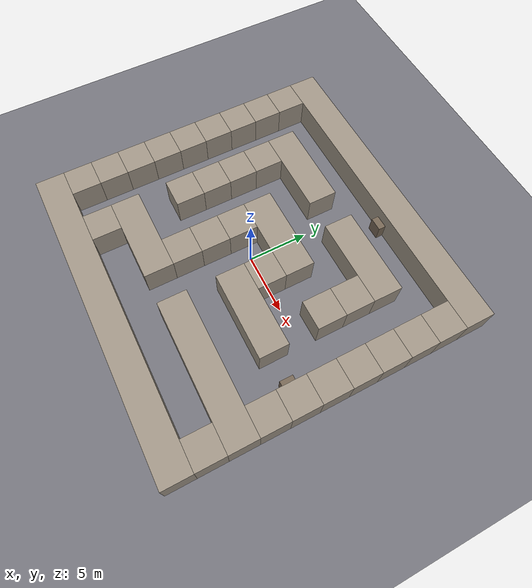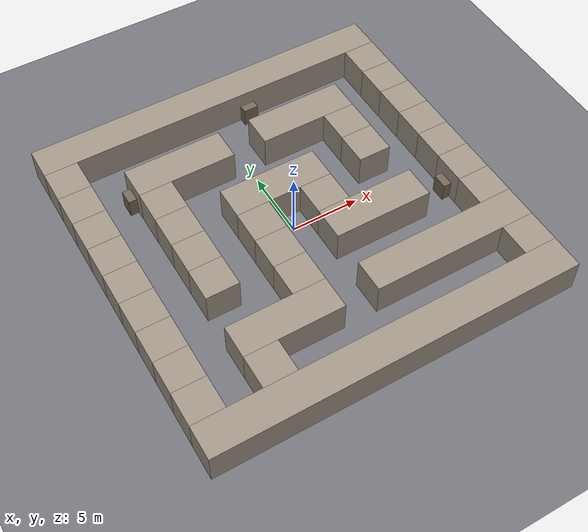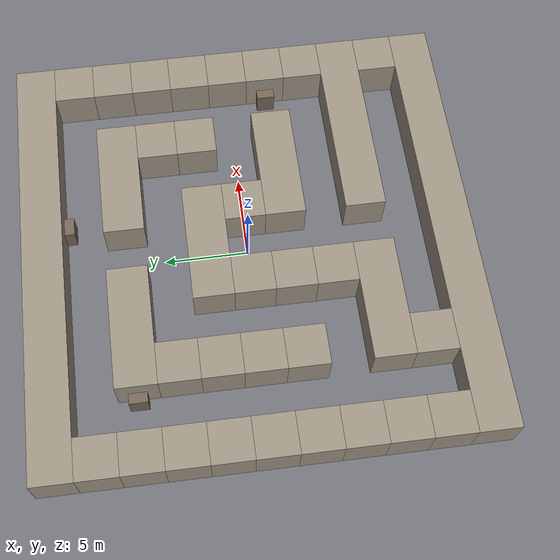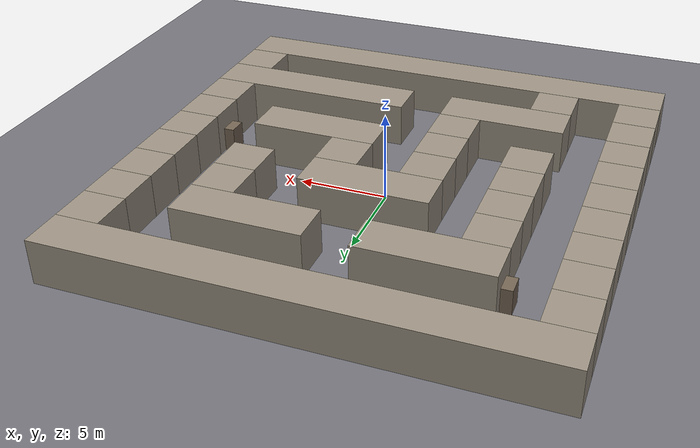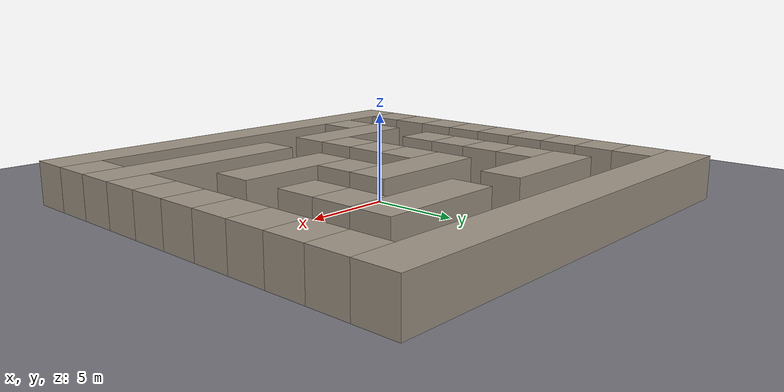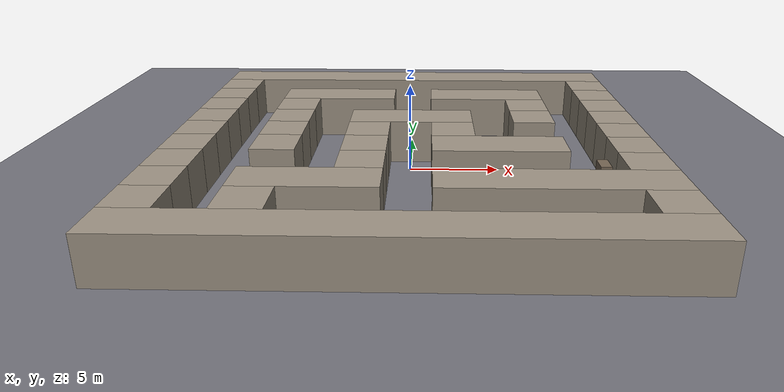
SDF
<sdf version="1.9">
 <world name="maze_survivors">
  <physics name="1ms" type="ignore">
   <max_step_size>0.001</max_step_size>
   <real_time_factor>1.0</real_time_factor>
  </physics>
  <plugin filename="gz-sim-physics-system" name="gz::sim::systems::Physics"/>
  <plugin filename="gz-sim-sensors-system" name="gz::sim::systems::Sensors">
   <render_engine>ogre2</render_engine>
  </plugin>
  <plugin filename="gz-sim-user-commands-system" name="gz::sim::systems::UserCommands"/>
  <plugin filename="gz-sim-scene-broadcaster-system" name="gz::sim::systems::SceneBroadcaster"/>
  <plugin filename="gz-sim-imu-system" name="gz::sim::systems::Imu"/>
  <scene><ambient>0.6 0.6 0.6 1</ambient><background>0.75 0.8 0.85</background><grid>false</grid></scene>
  <spherical_coordinates>
   <latitude_deg>-35.363262</latitude_deg>
   <longitude_deg>149.165237</longitude_deg>
   <elevation>584</elevation>
   <heading_deg>0</heading_deg>
   <surface_model>EARTH_WGS84</surface_model>
  </spherical_coordinates>
  <light type="directional" name="sun">
   <pose>0 0 20 0 0 0</pose>
   <diffuse>0.9 0.9 0.9 1</diffuse>
   <specular>0.3 0.3 0.3 1</specular>
   <direction>-0.4 0.2 -0.9</direction>
  </light>
  <model name="ground_plane">
   <static>true</static>
   <link name="link">
    <collision name="collision">
     <geometry><plane><normal>0 0 1</normal><size>200 200</size></plane></geometry>
    </collision>
    <visual name="visual">
     <geometry><plane><normal>0 0 1</normal><size>200 200</size></plane></geometry>
     <material><ambient>0.3 0.3 0.32 1</ambient><diffuse>0.45 0.45 0.48 1</diffuse></material>
    </visual>
   </link>
  </model>
  <model name="wall_0">
   <static>true</static>
   <pose>0.000 -12.000 1.250 0 0 0</pose>
   <link name="link">
    <collision name="collision"><geometry><box><size>26.400 2.400 2.500</size></box></geometry></collision>
    <visual name="visual">
     <geometry><box><size>26.400 2.400 2.500</size></box></geometry>
     <material><ambient>0.35 0.33 0.30 1</ambient><diffuse>0.62 0.58 0.52 1</diffuse></material>
    </visual>
   </link>
  </model>
  <model name="wall_1">
   <static>true</static>
   <pose>-12.000 -9.600 1.250 0 0 0</pose>
   <link name="link">
    <collision name="collision"><geometry><box><size>2.400 2.400 2.500</size></box></geometry></collision>
    <visual name="visual">
     <geometry><box><size>2.400 2.400 2.500</size></box></geometry>
     <material><ambient>0.35 0.33 0.30 1</ambient><diffuse>0.62 0.58 0.52 1</diffuse></material>
    </visual>
   </link>
  </model>
  <model name="wall_2">
   <static>true</static>
   <pose>-7.200 -9.600 1.250 0 0 0</pose>
   <link name="link">
    <collision name="collision"><geometry><box><size>2.400 2.400 2.500</size></box></geometry></collision>
    <visual name="visual">
     <geometry><box><size>2.400 2.400 2.500</size></box></geometry>
     <material><ambient>0.35 0.33 0.30 1</ambient><diffuse>0.62 0.58 0.52 1</diffuse></material>
    </visual>
   </link>
  </model>
  <model name="wall_3">
   <static>true</static>
   <pose>12.000 -9.600 1.250 0 0 0</pose>
   <link name="link">
    <collision name="collision"><geometry><box><size>2.400 2.400 2.500</size></box></geometry></collision>
    <visual name="visual">
     <geometry><box><size>2.400 2.400 2.500</size></box></geometry>
     <material><ambient>0.35 0.33 0.30 1</ambient><diffuse>0.62 0.58 0.52 1</diffuse></material>
    </visual>
   </link>
  </model>
  <model name="wall_4">
   <static>true</static>
   <pose>-12.000 -7.200 1.250 0 0 0</pose>
   <link name="link">
    <collision name="collision"><geometry><box><size>2.400 2.400 2.500</size></box></geometry></collision>
    <visual name="visual">
     <geometry><box><size>2.400 2.400 2.500</size></box></geometry>
     <material><ambient>0.35 0.33 0.30 1</ambient><diffuse>0.62 0.58 0.52 1</diffuse></material>
    </visual>
   </link>
  </model>
  <model name="wall_5">
   <static>true</static>
   <pose>-4.800 -7.200 1.250 0 0 0</pose>
   <link name="link">
    <collision name="collision"><geometry><box><size>7.200 2.400 2.500</size></box></geometry></collision>
    <visual name="visual">
     <geometry><box><size>7.200 2.400 2.500</size></box></geometry>
     <material><ambient>0.35 0.33 0.30 1</ambient><diffuse>0.62 0.58 0.52 1</diffuse></material>
    </visual>
   </link>
  </model>
  <model name="wall_6">
   <static>true</static>
   <pose>7.200 -7.200 1.250 0 0 0</pose>
   <link name="link">
    <collision name="collision"><geometry><box><size>12.000 2.400 2.500</size></box></geometry></collision>
    <visual name="visual">
     <geometry><box><size>12.000 2.400 2.500</size></box></geometry>
     <material><ambient>0.35 0.33 0.30 1</ambient><diffuse>0.62 0.58 0.52 1</diffuse></material>
    </visual>
   </link>
  </model>
  <model name="wall_7">
   <static>true</static>
   <pose>-12.000 -4.800 1.250 0 0 0</pose>
   <link name="link">
    <collision name="collision"><geometry><box><size>2.400 2.400 2.500</size></box></geometry></collision>
    <visual name="visual">
     <geometry><box><size>2.400 2.400 2.500</size></box></geometry>
     <material><ambient>0.35 0.33 0.30 1</ambient><diffuse>0.62 0.58 0.52 1</diffuse></material>
    </visual>
   </link>
  </model>
  <model name="wall_8">
   <static>true</static>
   <pose>-2.400 -4.800 1.250 0 0 0</pose>
   <link name="link">
    <collision name="collision"><geometry><box><size>2.400 2.400 2.500</size></box></geometry></collision>
    <visual name="visual">
     <geometry><box><size>2.400 2.400 2.500</size></box></geometry>
     <material><ambient>0.35 0.33 0.30 1</ambient><diffuse>0.62 0.58 0.52 1</diffuse></material>
    </visual>
   </link>
  </model>
  <model name="wall_9">
   <static>true</static>
   <pose>12.000 -4.800 1.250 0 0 0</pose>
   <link name="link">
    <collision name="collision"><geometry><box><size>2.400 2.400 2.500</size></box></geometry></collision>
    <visual name="visual">
     <geometry><box><size>2.400 2.400 2.500</size></box></geometry>
     <material><ambient>0.35 0.33 0.30 1</ambient><diffuse>0.62 0.58 0.52 1</diffuse></material>
    </visual>
   </link>
  </model>
  <model name="wall_10">
   <static>true</static>
   <pose>-12.000 -2.400 1.250 0 0 0</pose>
   <link name="link">
    <collision name="collision"><geometry><box><size>2.400 2.400 2.500</size></box></geometry></collision>
    <visual name="visual">
     <geometry><box><size>2.400 2.400 2.500</size></box></geometry>
     <material><ambient>0.35 0.33 0.30 1</ambient><diffuse>0.62 0.58 0.52 1</diffuse></material>
    </visual>
   </link>
  </model>
  <model name="wall_11">
   <static>true</static>
   <pose>-7.200 -2.400 1.250 0 0 0</pose>
   <link name="link">
    <collision name="collision"><geometry><box><size>2.400 2.400 2.500</size></box></geometry></collision>
    <visual name="visual">
     <geometry><box><size>2.400 2.400 2.500</size></box></geometry>
     <material><ambient>0.35 0.33 0.30 1</ambient><diffuse>0.62 0.58 0.52 1</diffuse></material>
    </visual>
   </link>
  </model>
  <model name="wall_12">
   <static>true</static>
   <pose>-2.400 -2.400 1.250 0 0 0</pose>
   <link name="link">
    <collision name="collision"><geometry><box><size>2.400 2.400 2.500</size></box></geometry></collision>
    <visual name="visual">
     <geometry><box><size>2.400 2.400 2.500</size></box></geometry>
     <material><ambient>0.35 0.33 0.30 1</ambient><diffuse>0.62 0.58 0.52 1</diffuse></material>
    </visual>
   </link>
  </model>
  <model name="wall_13">
   <static>true</static>
   <pose>4.800 -2.400 1.250 0 0 0</pose>
   <link name="link">
    <collision name="collision"><geometry><box><size>7.200 2.400 2.500</size></box></geometry></collision>
    <visual name="visual">
     <geometry><box><size>7.200 2.400 2.500</size></box></geometry>
     <material><ambient>0.35 0.33 0.30 1</ambient><diffuse>0.62 0.58 0.52 1</diffuse></material>
    </visual>
   </link>
  </model>
  <model name="wall_14">
   <static>true</static>
   <pose>12.000 -2.400 1.250 0 0 0</pose>
   <link name="link">
    <collision name="collision"><geometry><box><size>2.400 2.400 2.500</size></box></geometry></collision>
    <visual name="visual">
     <geometry><box><size>2.400 2.400 2.500</size></box></geometry>
     <material><ambient>0.35 0.33 0.30 1</ambient><diffuse>0.62 0.58 0.52 1</diffuse></material>
    </visual>
   </link>
  </model>
  <model name="wall_15">
   <static>true</static>
   <pose>-12.000 0.000 1.250 0 0 0</pose>
   <link name="link">
    <collision name="collision"><geometry><box><size>2.400 2.400 2.500</size></box></geometry></collision>
    <visual name="visual">
     <geometry><box><size>2.400 2.400 2.500</size></box></geometry>
     <material><ambient>0.35 0.33 0.30 1</ambient><diffuse>0.62 0.58 0.52 1</diffuse></material>
    </visual>
   </link>
  </model>
  <model name="wall_16">
   <static>true</static>
   <pose>-7.200 0.000 1.250 0 0 0</pose>
   <link name="link">
    <collision name="collision"><geometry><box><size>2.400 2.400 2.500</size></box></geometry></collision>
    <visual name="visual">
     <geometry><box><size>2.400 2.400 2.500</size></box></geometry>
     <material><ambient>0.35 0.33 0.30 1</ambient><diffuse>0.62 0.58 0.52 1</diffuse></material>
    </visual>
   </link>
  </model>
  <model name="wall_17">
   <static>true</static>
   <pose>-2.400 0.000 1.250 0 0 0</pose>
   <link name="link">
    <collision name="collision"><geometry><box><size>2.400 2.400 2.500</size></box></geometry></collision>
    <visual name="visual">
     <geometry><box><size>2.400 2.400 2.500</size></box></geometry>
     <material><ambient>0.35 0.33 0.30 1</ambient><diffuse>0.62 0.58 0.52 1</diffuse></material>
    </visual>
   </link>
  </model>
  <model name="wall_18">
   <static>true</static>
   <pose>2.400 0.000 1.250 0 0 0</pose>
   <link name="link">
    <collision name="collision"><geometry><box><size>2.400 2.400 2.500</size></box></geometry></collision>
    <visual name="visual">
     <geometry><box><size>2.400 2.400 2.500</size></box></geometry>
     <material><ambient>0.35 0.33 0.30 1</ambient><diffuse>0.62 0.58 0.52 1</diffuse></material>
    </visual>
   </link>
  </model>
  <model name="wall_19">
   <static>true</static>
   <pose>12.000 0.000 1.250 0 0 0</pose>
   <link name="link">
    <collision name="collision"><geometry><box><size>2.400 2.400 2.500</size></box></geometry></collision>
    <visual name="visual">
     <geometry><box><size>2.400 2.400 2.500</size></box></geometry>
     <material><ambient>0.35 0.33 0.30 1</ambient><diffuse>0.62 0.58 0.52 1</diffuse></material>
    </visual>
   </link>
  </model>
  <model name="wall_20">
   <static>true</static>
   <pose>-12.000 2.400 1.250 0 0 0</pose>
   <link name="link">
    <collision name="collision"><geometry><box><size>2.400 2.400 2.500</size></box></geometry></collision>
    <visual name="visual">
     <geometry><box><size>2.400 2.400 2.500</size></box></geometry>
     <material><ambient>0.35 0.33 0.30 1</ambient><diffuse>0.62 0.58 0.52 1</diffuse></material>
    </visual>
   </link>
  </model>
  <model name="wall_21">
   <static>true</static>
   <pose>-7.200 2.400 1.250 0 0 0</pose>
   <link name="link">
    <collision name="collision"><geometry><box><size>2.400 2.400 2.500</size></box></geometry></collision>
    <visual name="visual">
     <geometry><box><size>2.400 2.400 2.500</size></box></geometry>
     <material><ambient>0.35 0.33 0.30 1</ambient><diffuse>0.62 0.58 0.52 1</diffuse></material>
    </visual>
   </link>
  </model>
  <model name="wall_22">
   <static>true</static>
   <pose>0.000 2.400 1.250 0 0 0</pose>
   <link name="link">
    <collision name="collision"><geometry><box><size>7.200 2.400 2.500</size></box></geometry></collision>
    <visual name="visual">
     <geometry><box><size>7.200 2.400 2.500</size></box></geometry>
     <material><ambient>0.35 0.33 0.30 1</ambient><diffuse>0.62 0.58 0.52 1</diffuse></material>
    </visual>
   </link>
  </model>
  <model name="wall_23">
   <static>true</static>
   <pose>7.200 2.400 1.250 0 0 0</pose>
   <link name="link">
    <collision name="collision"><geometry><box><size>2.400 2.400 2.500</size></box></geometry></collision>
    <visual name="visual">
     <geometry><box><size>2.400 2.400 2.500</size></box></geometry>
     <material><ambient>0.35 0.33 0.30 1</ambient><diffuse>0.62 0.58 0.52 1</diffuse></material>
    </visual>
   </link>
  </model>
  <model name="wall_24">
   <static>true</static>
   <pose>12.000 2.400 1.250 0 0 0</pose>
   <link name="link">
    <collision name="collision"><geometry><box><size>2.400 2.400 2.500</size></box></geometry></collision>
    <visual name="visual">
     <geometry><box><size>2.400 2.400 2.500</size></box></geometry>
     <material><ambient>0.35 0.33 0.30 1</ambient><diffuse>0.62 0.58 0.52 1</diffuse></material>
    </visual>
   </link>
  </model>
  <model name="wall_25">
   <static>true</static>
   <pose>-12.000 4.800 1.250 0 0 0</pose>
   <link name="link">
    <collision name="collision"><geometry><box><size>2.400 2.400 2.500</size></box></geometry></collision>
    <visual name="visual">
     <geometry><box><size>2.400 2.400 2.500</size></box></geometry>
     <material><ambient>0.35 0.33 0.30 1</ambient><diffuse>0.62 0.58 0.52 1</diffuse></material>
    </visual>
   </link>
  </model>
  <model name="wall_26">
   <static>true</static>
   <pose>-7.200 4.800 1.250 0 0 0</pose>
   <link name="link">
    <collision name="collision"><geometry><box><size>2.400 2.400 2.500</size></box></geometry></collision>
    <visual name="visual">
     <geometry><box><size>2.400 2.400 2.500</size></box></geometry>
     <material><ambient>0.35 0.33 0.30 1</ambient><diffuse>0.62 0.58 0.52 1</diffuse></material>
    </visual>
   </link>
  </model>
  <model name="wall_27">
   <static>true</static>
   <pose>7.200 4.800 1.250 0 0 0</pose>
   <link name="link">
    <collision name="collision"><geometry><box><size>2.400 2.400 2.500</size></box></geometry></collision>
    <visual name="visual">
     <geometry><box><size>2.400 2.400 2.500</size></box></geometry>
     <material><ambient>0.35 0.33 0.30 1</ambient><diffuse>0.62 0.58 0.52 1</diffuse></material>
    </visual>
   </link>
  </model>
  <model name="wall_28">
   <static>true</static>
   <pose>12.000 4.800 1.250 0 0 0</pose>
   <link name="link">
    <collision name="collision"><geometry><box><size>2.400 2.400 2.500</size></box></geometry></collision>
    <visual name="visual">
     <geometry><box><size>2.400 2.400 2.500</size></box></geometry>
     <material><ambient>0.35 0.33 0.30 1</ambient><diffuse>0.62 0.58 0.52 1</diffuse></material>
    </visual>
   </link>
  </model>
  <model name="wall_29">
   <static>true</static>
   <pose>-12.000 7.200 1.250 0 0 0</pose>
   <link name="link">
    <collision name="collision"><geometry><box><size>2.400 2.400 2.500</size></box></geometry></collision>
    <visual name="visual">
     <geometry><box><size>2.400 2.400 2.500</size></box></geometry>
     <material><ambient>0.35 0.33 0.30 1</ambient><diffuse>0.62 0.58 0.52 1</diffuse></material>
    </visual>
   </link>
  </model>
  <model name="wall_30">
   <static>true</static>
   <pose>-4.800 7.200 1.250 0 0 0</pose>
   <link name="link">
    <collision name="collision"><geometry><box><size>7.200 2.400 2.500</size></box></geometry></collision>
    <visual name="visual">
     <geometry><box><size>7.200 2.400 2.500</size></box></geometry>
     <material><ambient>0.35 0.33 0.30 1</ambient><diffuse>0.62 0.58 0.52 1</diffuse></material>
    </visual>
   </link>
  </model>
  <model name="wall_31">
   <static>true</static>
   <pose>4.800 7.200 1.250 0 0 0</pose>
   <link name="link">
    <collision name="collision"><geometry><box><size>7.200 2.400 2.500</size></box></geometry></collision>
    <visual name="visual">
     <geometry><box><size>7.200 2.400 2.500</size></box></geometry>
     <material><ambient>0.35 0.33 0.30 1</ambient><diffuse>0.62 0.58 0.52 1</diffuse></material>
    </visual>
   </link>
  </model>
  <model name="wall_32">
   <static>true</static>
   <pose>12.000 7.200 1.250 0 0 0</pose>
   <link name="link">
    <collision name="collision"><geometry><box><size>2.400 2.400 2.500</size></box></geometry></collision>
    <visual name="visual">
     <geometry><box><size>2.400 2.400 2.500</size></box></geometry>
     <material><ambient>0.35 0.33 0.30 1</ambient><diffuse>0.62 0.58 0.52 1</diffuse></material>
    </visual>
   </link>
  </model>
  <model name="wall_33">
   <static>true</static>
   <pose>-12.000 9.600 1.250 0 0 0</pose>
   <link name="link">
    <collision name="collision"><geometry><box><size>2.400 2.400 2.500</size></box></geometry></collision>
    <visual name="visual">
     <geometry><box><size>2.400 2.400 2.500</size></box></geometry>
     <material><ambient>0.35 0.33 0.30 1</ambient><diffuse>0.62 0.58 0.52 1</diffuse></material>
    </visual>
   </link>
  </model>
  <model name="wall_34">
   <static>true</static>
   <pose>12.000 9.600 1.250 0 0 0</pose>
   <link name="link">
    <collision name="collision"><geometry><box><size>2.400 2.400 2.500</size></box></geometry></collision>
    <visual name="visual">
     <geometry><box><size>2.400 2.400 2.500</size></box></geometry>
     <material><ambient>0.35 0.33 0.30 1</ambient><diffuse>0.62 0.58 0.52 1</diffuse></material>
    </visual>
   </link>
  </model>
  <model name="wall_35">
   <static>true</static>
   <pose>0.000 12.000 1.250 0 0 0</pose>
   <link name="link">
    <collision name="collision"><geometry><box><size>26.400 2.400 2.500</size></box></geometry></collision>
    <visual name="visual">
     <geometry><box><size>26.400 2.400 2.500</size></box></geometry>
     <material><ambient>0.35 0.33 0.30 1</ambient><diffuse>0.62 0.58 0.52 1</diffuse></material>
    </visual>
   </link>
  </model>
  <model name="debris_1">
   <static>true</static>
   <pose>10.500 -2.400 0.700 0 0 0</pose>
   <link name="link">
    <collision name="collision"><geometry><box><size>0.600 1.080 1.400</size></box></geometry></collision>
    <visual name="visual">
     <geometry><box><size>0.600 1.080 1.400</size></box></geometry>
     <material><ambient>0.28 0.24 0.20 1</ambient><diffuse>0.46 0.40 0.33 1</diffuse></material>
    </visual>
   </link>
  </model>
  <model name="debris_2">
   <static>true</static>
   <pose>2.400 10.500 0.700 0 0 0</pose>
   <link name="link">
    <collision name="collision"><geometry><box><size>1.080 0.600 1.400</size></box></geometry></collision>
    <visual name="visual">
     <geometry><box><size>1.080 0.600 1.400</size></box></geometry>
     <material><ambient>0.28 0.24 0.20 1</ambient><diffuse>0.46 0.40 0.33 1</diffuse></material>
    </visual>
   </link>
  </model>
  <model name="debris_3">
   <static>true</static>
   <pose>-8.700 7.200 0.700 0 0 0</pose>
   <link name="link">
    <collision name="collision"><geometry><box><size>0.600 1.080 1.400</size></box></geometry></collision>
    <visual name="visual">
     <geometry><box><size>0.600 1.080 1.400</size></box></geometry>
     <material><ambient>0.28 0.24 0.20 1</ambient><diffuse>0.46 0.40 0.33 1</diffuse></material>
    </visual>
   </link>
  </model>
  <model name="observer">
   <static>true</static>
   <pose>0 0 30.0 0 1.5707963 1.5707963</pose>
   <link name="link">
    <sensor name="observer_camera" type="camera">
     <topic>/observer/image</topic>
     <gz_frame_id>observer</gz_frame_id>
     <update_rate>10</update_rate>
     <always_on>1</always_on>
     <camera>
      <horizontal_fov>0.9157</horizontal_fov>
      <image><width>720</width><height>720</height><format>R8G8B8</format></image>
      <clip><near>0.5</near><far>200.0</far></clip>
     </camera>
    </sensor>
   </link>
  </model>
 </world>
</sdf>
